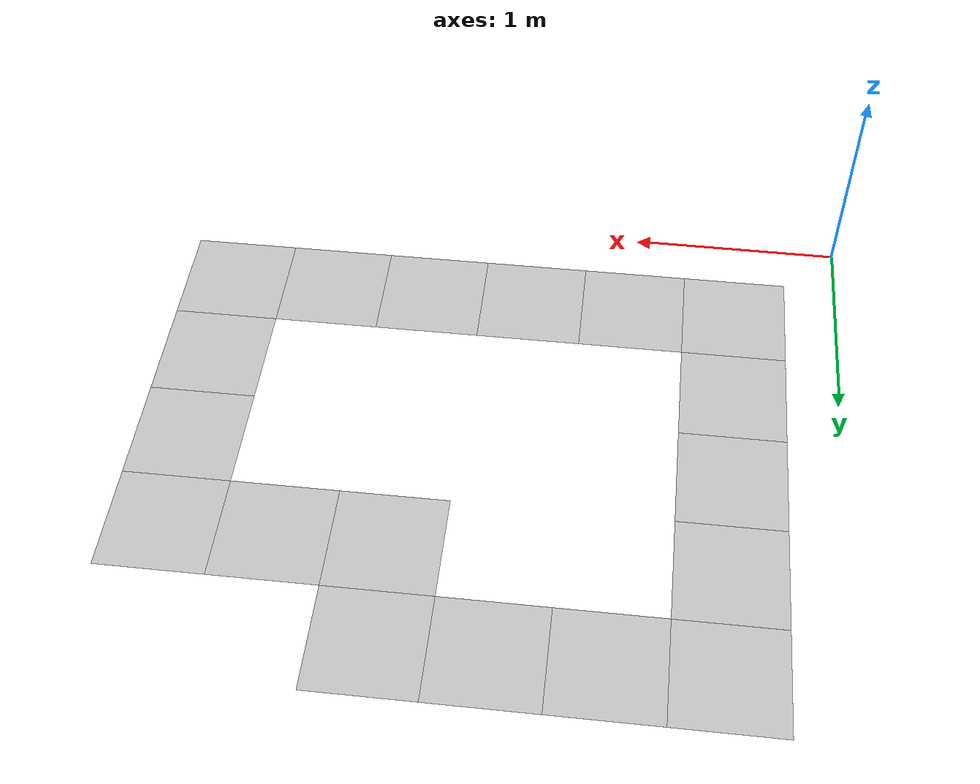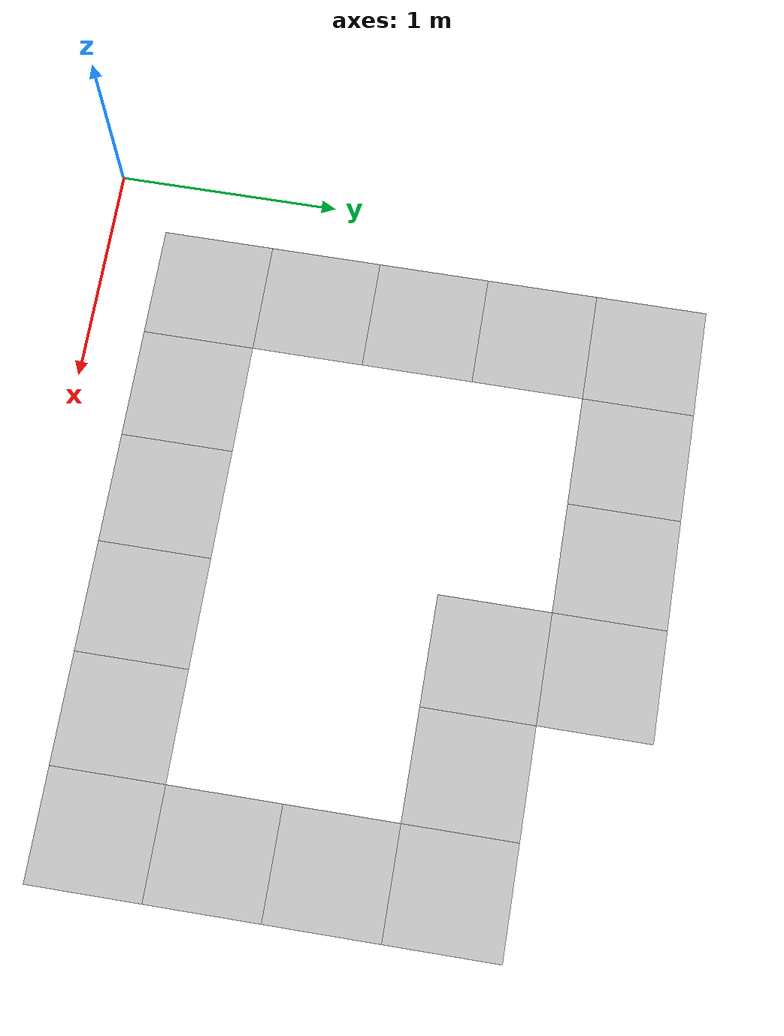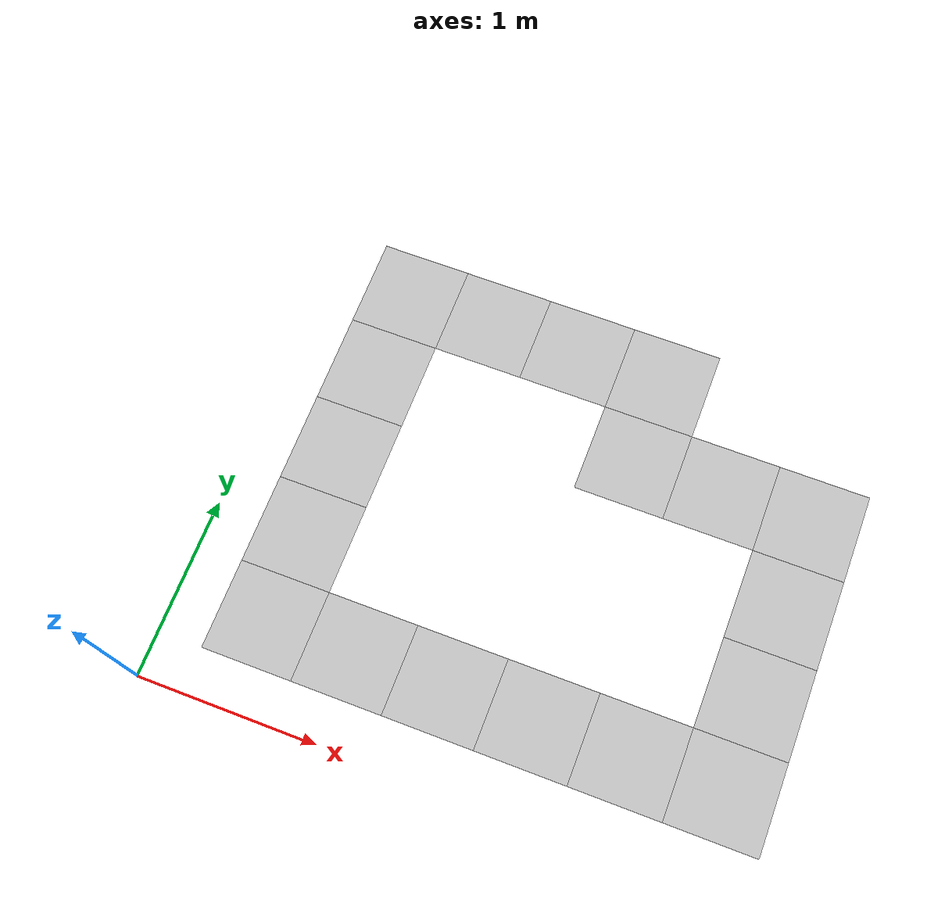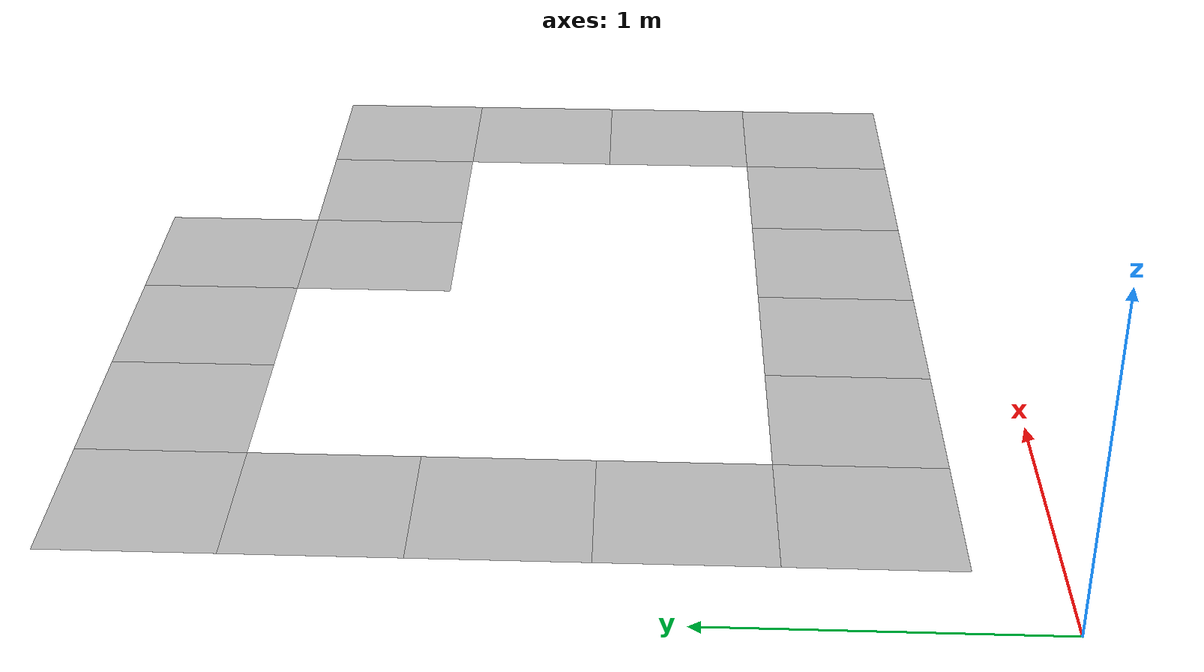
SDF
<sdf version="1.9">
 <world name="default">
  <model name="unit_box_tile_1_1">
   <model name="model_tile_1_1">
    <static>true</static>
    <pose>0.5 0.5 0.01 1.5707963267948966 -0 3.141592653589793</pose>
    <link name="link_tile_1_1">
     <collision name="collision_tile_1_1">
      <geometry>
       <mesh><scale>0.5 0.5 0.5</scale><uri>model://curve_left_1/meshes/curve_left_1.obj</uri></mesh>
      </geometry>
     </collision>
     <visual name="visual_tile_1_1">
      <geometry>
       <mesh>
        <scale>0.5 0.5 0.5</scale>
        <uri>model://curve_left_1/meshes/curve_left_1.obj</uri>
        <pose>0.5 0.5 0.01 1.5707963267948966 -0 3.141592653589793</pose>
       </mesh>
      </geometry>
     </visual>
    </link>
   </model>
   <static>false</static>
  </model>
  <model name="unit_box_tile_2_1">
   <model name="model_tile_2_1">
    <static>true</static>
    <pose>1.0 0.5 0.01 1.5707963267948966 -0 4.71238898038469</pose>
    <link name="link_tile_2_1">
     <collision name="collision_tile_2_1">
      <geometry><mesh><scale>0.5 0.5 0.5</scale><uri>model://straight/meshes/straight.obj</uri></mesh></geometry>
     </collision>
     <visual name="visual_tile_2_1">
      <geometry>
       <mesh>
        <scale>0.5 0.5 0.5</scale>
        <uri>model://straight/meshes/straight.obj</uri>
        <pose>1.0 0.5 0.01 1.5707963267948966 -0 4.71238898038469</pose>
       </mesh>
      </geometry>
     </visual>
    </link>
   </model>
   <static>false</static>
  </model>
  <model name="unit_box_tile_3_1">
   <model name="model_tile_3_1">
    <static>true</static>
    <pose>1.5 0.5 0.01 1.5707963267948966 -0 4.71238898038469</pose>
    <link name="link_tile_3_1">
     <collision name="collision_tile_3_1">
      <geometry><mesh><scale>0.5 0.5 0.5</scale><uri>model://straight/meshes/straight.obj</uri></mesh></geometry>
     </collision>
     <visual name="visual_tile_3_1">
      <geometry>
       <mesh>
        <scale>0.5 0.5 0.5</scale>
        <uri>model://straight/meshes/straight.obj</uri>
        <pose>1.5 0.5 0.01 1.5707963267948966 -0 4.71238898038469</pose>
       </mesh>
      </geometry>
     </visual>
    </link>
   </model>
   <static>false</static>
  </model>
  <model name="unit_box_tile_4_1">
   <model name="model_tile_4_1">
    <static>true</static>
    <pose>2.0 0.5 0.01 1.5707963267948966 -0 4.71238898038469</pose>
    <link name="link_tile_4_1">
     <collision name="collision_tile_4_1">
      <geometry><mesh><scale>0.5 0.5 0.5</scale><uri>model://straight/meshes/straight.obj</uri></mesh></geometry>
     </collision>
     <visual name="visual_tile_4_1">
      <geometry>
       <mesh>
        <scale>0.5 0.5 0.5</scale>
        <uri>model://straight/meshes/straight.obj</uri>
        <pose>2.0 0.5 0.01 1.5707963267948966 -0 4.71238898038469</pose>
       </mesh>
      </geometry>
     </visual>
    </link>
   </model>
   <static>false</static>
  </model>
  <model name="unit_box_tile_5_1">
   <model name="model_tile_5_1">
    <static>true</static>
    <pose>2.5 0.5 0.01 1.5707963267948966 -0 4.71238898038469</pose>
    <link name="link_tile_5_1">
     <collision name="collision_tile_5_1">
      <geometry><mesh><scale>0.5 0.5 0.5</scale><uri>model://straight/meshes/straight.obj</uri></mesh></geometry>
     </collision>
     <visual name="visual_tile_5_1">
      <geometry>
       <mesh>
        <scale>0.5 0.5 0.5</scale>
        <uri>model://straight/meshes/straight.obj</uri>
        <pose>2.5 0.5 0.01 1.5707963267948966 -0 4.71238898038469</pose>
       </mesh>
      </geometry>
     </visual>
    </link>
   </model>
   <static>false</static>
  </model>
  <model name="unit_box_tile_6_1">
   <model name="model_tile_6_1">
    <static>true</static>
    <pose>3.0 0.5 0.01 1.5707963267948966 -0 4.71238898038469</pose>
    <link name="link_tile_6_1">
     <collision name="collision_tile_6_1">
      <geometry>
       <mesh><scale>0.5 0.5 0.5</scale><uri>model://curve_left_1/meshes/curve_left_1.obj</uri></mesh>
      </geometry>
     </collision>
     <visual name="visual_tile_6_1">
      <geometry>
       <mesh>
        <scale>0.5 0.5 0.5</scale>
        <uri>model://curve_left_1/meshes/curve_left_1.obj</uri>
        <pose>3.0 0.5 0.01 1.5707963267948966 -0 4.71238898038469</pose>
       </mesh>
      </geometry>
     </visual>
    </link>
   </model>
   <static>false</static>
  </model>
  <model name="unit_box_tile_1_2">
   <model name="model_tile_1_2">
    <static>true</static>
    <pose>0.5 1.0 0.01 1.5707963267948966 -0 3.141592653589793</pose>
    <link name="link_tile_1_2">
     <collision name="collision_tile_1_2">
      <geometry><mesh><scale>0.5 0.5 0.5</scale><uri>model://straight/meshes/straight.obj</uri></mesh></geometry>
     </collision>
     <visual name="visual_tile_1_2">
      <geometry>
       <mesh>
        <scale>0.5 0.5 0.5</scale>
        <uri>model://straight/meshes/straight.obj</uri>
        <pose>0.5 1.0 0.01 1.5707963267948966 -0 3.141592653589793</pose>
       </mesh>
      </geometry>
     </visual>
    </link>
   </model>
   <static>false</static>
  </model>
  <model name="unit_box_tile_6_2">
   <model name="model_tile_6_2">
    <static>true</static>
    <pose>3.0 1.0 0.01 1.5707963267948966 -0 0.0</pose>
    <link name="link_tile_6_2">
     <collision name="collision_tile_6_2">
      <geometry><mesh><scale>0.5 0.5 0.5</scale><uri>model://straight/meshes/straight.obj</uri></mesh></geometry>
     </collision>
     <visual name="visual_tile_6_2">
      <geometry>
       <mesh>
        <scale>0.5 0.5 0.5</scale>
        <uri>model://straight/meshes/straight.obj</uri>
        <pose>3.0 1.0 0.01 1.5707963267948966 -0 0.0</pose>
       </mesh>
      </geometry>
     </visual>
    </link>
   </model>
   <static>false</static>
  </model>
  <model name="unit_box_tile_1_3">
   <model name="model_tile_1_3">
    <static>true</static>
    <pose>0.5 1.5 0.01 1.5707963267948966 -0 3.141592653589793</pose>
    <link name="link_tile_1_3">
     <collision name="collision_tile_1_3">
      <geometry><mesh><scale>0.5 0.5 0.5</scale><uri>model://straight/meshes/straight.obj</uri></mesh></geometry>
     </collision>
     <visual name="visual_tile_1_3">
      <geometry>
       <mesh>
        <scale>0.5 0.5 0.5</scale>
        <uri>model://straight/meshes/straight.obj</uri>
        <pose>0.5 1.5 0.01 1.5707963267948966 -0 3.141592653589793</pose>
       </mesh>
      </geometry>
     </visual>
    </link>
   </model>
   <static>false</static>
  </model>
  <model name="unit_box_tile_6_3">
   <model name="model_tile_6_3">
    <static>true</static>
    <pose>3.0 1.5 0.01 1.5707963267948966 -0 0.0</pose>
    <link name="link_tile_6_3">
     <collision name="collision_tile_6_3">
      <geometry><mesh><scale>0.5 0.5 0.5</scale><uri>model://straight/meshes/straight.obj</uri></mesh></geometry>
     </collision>
     <visual name="visual_tile_6_3">
      <geometry>
       <mesh>
        <scale>0.5 0.5 0.5</scale>
        <uri>model://straight/meshes/straight.obj</uri>
        <pose>3.0 1.5 0.01 1.5707963267948966 -0 0.0</pose>
       </mesh>
      </geometry>
     </visual>
    </link>
   </model>
   <static>false</static>
  </model>
  <model name="unit_box_tile_1_4">
   <model name="model_tile_1_4">
    <static>true</static>
    <pose>0.5 2.0 0.01 1.5707963267948966 -0 3.141592653589793</pose>
    <link name="link_tile_1_4">
     <collision name="collision_tile_1_4">
      <geometry><mesh><scale>0.5 0.5 0.5</scale><uri>model://straight/meshes/straight.obj</uri></mesh></geometry>
     </collision>
     <visual name="visual_tile_1_4">
      <geometry>
       <mesh>
        <scale>0.5 0.5 0.5</scale>
        <uri>model://straight/meshes/straight.obj</uri>
        <pose>0.5 2.0 0.01 1.5707963267948966 -0 3.141592653589793</pose>
       </mesh>
      </geometry>
     </visual>
    </link>
   </model>
   <static>false</static>
  </model>
  <model name="unit_box_tile_4_4">
   <model name="model_tile_4_4">
    <static>true</static>
    <pose>2.0 2.0 0.01 1.5707963267948966 -0 1.5707963267948966</pose>
    <link name="link_tile_4_4">
     <collision name="collision_tile_4_4">
      <geometry>
       <mesh><scale>0.5 0.5 0.5</scale><uri>model://curve_right_1/meshes/curve_right_1.obj</uri></mesh>
      </geometry>
     </collision>
     <visual name="visual_tile_4_4">
      <geometry>
       <mesh>
        <scale>0.5 0.5 0.5</scale>
        <uri>model://curve_right_1/meshes/curve_right_1.obj</uri>
        <pose>2.0 2.0 0.01 1.5707963267948966 -0 1.5707963267948966</pose>
       </mesh>
      </geometry>
     </visual>
    </link>
   </model>
   <static>false</static>
  </model>
  <model name="unit_box_tile_5_4">
   <model name="model_tile_5_4">
    <static>true</static>
    <pose>2.5 2.0 0.01 1.5707963267948966 -0 1.5707963267948966</pose>
    <link name="link_tile_5_4">
     <collision name="collision_tile_5_4">
      <geometry><mesh><scale>0.5 0.5 0.5</scale><uri>model://straight/meshes/straight.obj</uri></mesh></geometry>
     </collision>
     <visual name="visual_tile_5_4">
      <geometry>
       <mesh>
        <scale>0.5 0.5 0.5</scale>
        <uri>model://straight/meshes/straight.obj</uri>
        <pose>2.5 2.0 0.01 1.5707963267948966 -0 1.5707963267948966</pose>
       </mesh>
      </geometry>
     </visual>
    </link>
   </model>
   <static>false</static>
  </model>
  <model name="unit_box_tile_6_4">
   <model name="model_tile_6_4">
    <static>true</static>
    <pose>3.0 2.0 0.01 1.5707963267948966 -0 0.0</pose>
    <link name="link_tile_6_4">
     <collision name="collision_tile_6_4">
      <geometry>
       <mesh><scale>0.5 0.5 0.5</scale><uri>model://curve_left_1/meshes/curve_left_1.obj</uri></mesh>
      </geometry>
     </collision>
     <visual name="visual_tile_6_4">
      <geometry>
       <mesh>
        <scale>0.5 0.5 0.5</scale>
        <uri>model://curve_left_1/meshes/curve_left_1.obj</uri>
        <pose>3.0 2.0 0.01 1.5707963267948966 -0 0.0</pose>
       </mesh>
      </geometry>
     </visual>
    </link>
   </model>
   <static>false</static>
  </model>
  <model name="unit_box_tile_1_5">
   <model name="model_tile_1_5">
    <static>true</static>
    <pose>0.5 2.5 0.01 1.5707963267948966 -0 1.5707963267948966</pose>
    <link name="link_tile_1_5">
     <collision name="collision_tile_1_5">
      <geometry>
       <mesh><scale>0.5 0.5 0.5</scale><uri>model://curve_left_1/meshes/curve_left_1.obj</uri></mesh>
      </geometry>
     </collision>
     <visual name="visual_tile_1_5">
      <geometry>
       <mesh>
        <scale>0.5 0.5 0.5</scale>
        <uri>model://curve_left_1/meshes/curve_left_1.obj</uri>
        <pose>0.5 2.5 0.01 1.5707963267948966 -0 1.5707963267948966</pose>
       </mesh>
      </geometry>
     </visual>
    </link>
   </model>
   <static>false</static>
  </model>
  <model name="unit_box_tile_2_5">
   <model name="model_tile_2_5">
    <static>true</static>
    <pose>1.0 2.5 0.01 1.5707963267948966 -0 1.5707963267948966</pose>
    <link name="link_tile_2_5">
     <collision name="collision_tile_2_5">
      <geometry><mesh><scale>0.5 0.5 0.5</scale><uri>model://straight/meshes/straight.obj</uri></mesh></geometry>
     </collision>
     <visual name="visual_tile_2_5">
      <geometry>
       <mesh>
        <scale>0.5 0.5 0.5</scale>
        <uri>model://straight/meshes/straight.obj</uri>
        <pose>1.0 2.5 0.01 1.5707963267948966 -0 1.5707963267948966</pose>
       </mesh>
      </geometry>
     </visual>
    </link>
   </model>
   <static>false</static>
  </model>
  <model name="unit_box_tile_3_5">
   <model name="model_tile_3_5">
    <static>true</static>
    <pose>1.5 2.5 0.01 1.5707963267948966 -0 1.5707963267948966</pose>
    <link name="link_tile_3_5">
     <collision name="collision_tile_3_5">
      <geometry><mesh><scale>0.5 0.5 0.5</scale><uri>model://straight/meshes/straight.obj</uri></mesh></geometry>
     </collision>
     <visual name="visual_tile_3_5">
      <geometry>
       <mesh>
        <scale>0.5 0.5 0.5</scale>
        <uri>model://straight/meshes/straight.obj</uri>
        <pose>1.5 2.5 0.01 1.5707963267948966 -0 1.5707963267948966</pose>
       </mesh>
      </geometry>
     </visual>
    </link>
   </model>
   <static>false</static>
  </model>
  <model name="unit_box_tile_4_5">
   <model name="model_tile_4_5">
    <static>true</static>
    <pose>2.0 2.5 0.01 1.5707963267948966 -0 0.0</pose>
    <link name="link_tile_4_5">
     <collision name="collision_tile_4_5">
      <geometry>
       <mesh><scale>0.5 0.5 0.5</scale><uri>model://curve_left_1/meshes/curve_left_1.obj</uri></mesh>
      </geometry>
     </collision>
     <visual name="visual_tile_4_5">
      <geometry>
       <mesh>
        <scale>0.5 0.5 0.5</scale>
        <uri>model://curve_left_1/meshes/curve_left_1.obj</uri>
        <pose>2.0 2.5 0.01 1.5707963267948966 -0 0.0</pose>
       </mesh>
      </geometry>
     </visual>
    </link>
   </model>
   <static>false</static>
  </model>
  <model name="model_obj_0_5_1_5">
   <static>true</static>
   <pose>0.25 0.75 0.01 1.5708 -0 0</pose>
   <link name="link_obj_0_5_1_5">
    <collision name="collision_obj_0_5_1_5">
     <geometry>
      <mesh>
       <scale>0.001586 0.001586 0.001586</scale>
       <uri>file:///home/arendjan/ros2/ros2_rsp/install/mirte_gazebo/share/mirte_gazebo/worlds/model://cone/meshes/cone.obj</uri>
      </mesh>
     </geometry>
    </collision>
    <visual name="visual_obj_0_5_1_5">
     <geometry>
      <mesh>
       <scale>0.001586 0.001586 0.001586</scale>
       <uri>file:///home/arendjan/ros2/ros2_rsp/install/mirte_gazebo/share/mirte_gazebo/worlds/model://cone/meshes/cone.obj</uri>
       <pose>0.25 0.75 0.01 1.5707963267948966 -0 0.0</pose>
      </mesh>
     </geometry>
    </visual>
    <inertial>
     <mass>1</mass>
     <inertia><ixx>1</ixx><ixy>0</ixy><ixz>0</ixz><iyy>1</iyy><iyz>0</iyz><izz>1</izz></inertia>
    </inertial>
   </link>
  </model>
  <model name="model_obj_1_5_0_5">
   <static>true</static>
   <pose>0.75 0.25 0.01 1.5708 -0 0</pose>
   <link name="link_obj_1_5_0_5">
    <collision name="collision_obj_1_5_0_5">
     <geometry>
      <mesh>
       <scale>0.001586 0.001586 0.001586</scale>
       <uri>file:///home/arendjan/ros2/ros2_rsp/install/mirte_gazebo/share/mirte_gazebo/worlds/model://cone/meshes/cone.obj</uri>
      </mesh>
     </geometry>
    </collision>
    <visual name="visual_obj_1_5_0_5">
     <geometry>
      <mesh>
       <scale>0.001586 0.001586 0.001586</scale>
       <uri>file:///home/arendjan/ros2/ros2_rsp/install/mirte_gazebo/share/mirte_gazebo/worlds/model://cone/meshes/cone.obj</uri>
       <pose>0.75 0.25 0.01 1.5707963267948966 -0 0.0</pose>
      </mesh>
     </geometry>
    </visual>
    <inertial>
     <mass>1</mass>
     <inertia><ixx>1</ixx><ixy>0</ixy><ixz>0</ixz><iyy>1</iyy><iyz>0</iyz><izz>1</izz></inertia>
    </inertial>
   </link>
  </model>
  <model name="model_obj_0_55_1_25">
   <static>true</static>
   <pose>0.275 0.625 0.01 1.5708 -0 0</pose>
   <link name="link_obj_0_55_1_25">
    <collision name="collision_obj_0_55_1_25">
     <geometry>
      <mesh>
       <scale>0.001586 0.001586 0.001586</scale>
       <uri>file:///home/arendjan/ros2/ros2_rsp/install/mirte_gazebo/share/mirte_gazebo/worlds/model://cone/meshes/cone.obj</uri>
      </mesh>
     </geometry>
    </collision>
    <visual name="visual_obj_0_55_1_25">
     <geometry>
      <mesh>
       <scale>0.001586 0.001586 0.001586</scale>
       <uri>file:///home/arendjan/ros2/ros2_rsp/install/mirte_gazebo/share/mirte_gazebo/worlds/model://cone/meshes/cone.obj</uri>
       <pose>0.275 0.625 0.01 1.5707963267948966 -0 0.0</pose>
      </mesh>
     </geometry>
    </visual>
    <inertial>
     <mass>1</mass>
     <inertia><ixx>1</ixx><ixy>0</ixy><ixz>0</ixz><iyy>1</iyy><iyz>0</iyz><izz>1</izz></inertia>
    </inertial>
   </link>
  </model>
  <model name="model_obj_1_25_0_55">
   <static>true</static>
   <pose>0.625 0.275 0.01 1.5708 -0 0</pose>
   <link name="link_obj_1_25_0_55">
    <collision name="collision_obj_1_25_0_55">
     <geometry>
      <mesh>
       <scale>0.001586 0.001586 0.001586</scale>
       <uri>file:///home/arendjan/ros2/ros2_rsp/install/mirte_gazebo/share/mirte_gazebo/worlds/model://cone/meshes/cone.obj</uri>
      </mesh>
     </geometry>
    </collision>
    <visual name="visual_obj_1_25_0_55">
     <geometry>
      <mesh>
       <scale>0.001586 0.001586 0.001586</scale>
       <uri>file:///home/arendjan/ros2/ros2_rsp/install/mirte_gazebo/share/mirte_gazebo/worlds/model://cone/meshes/cone.obj</uri>
       <pose>0.625 0.275 0.01 1.5707963267948966 -0 0.0</pose>
      </mesh>
     </geometry>
    </visual>
    <inertial>
     <mass>1</mass>
     <inertia><ixx>1</ixx><ixy>0</ixy><ixz>0</ixz><iyy>1</iyy><iyz>0</iyz><izz>1</izz></inertia>
    </inertial>
   </link>
  </model>
  <model name="model_obj_0_7_0_7">
   <static>true</static>
   <pose>0.35 0.35 0.01 1.5708 -0 0</pose>
   <link name="link_obj_0_7_0_7">
    <collision name="collision_obj_0_7_0_7">
     <geometry>
      <mesh>
       <scale>0.001586 0.001586 0.001586</scale>
       <uri>file:///home/arendjan/ros2/ros2_rsp/install/mirte_gazebo/share/mirte_gazebo/worlds/model://cone/meshes/cone.obj</uri>
      </mesh>
     </geometry>
    </collision>
    <visual name="visual_obj_0_7_0_7">
     <geometry>
      <mesh>
       <scale>0.001586 0.001586 0.001586</scale>
       <uri>file:///home/arendjan/ros2/ros2_rsp/install/mirte_gazebo/share/mirte_gazebo/worlds/model://cone/meshes/cone.obj</uri>
       <pose>0.35 0.35 0.01 1.5707963267948966 -0 0.0</pose>
      </mesh>
     </geometry>
    </visual>
    <inertial>
     <mass>1</mass>
     <inertia><ixx>1</ixx><ixy>0</ixy><ixz>0</ixz><iyy>1</iyy><iyz>0</iyz><izz>1</izz></inertia>
    </inertial>
   </link>
  </model>
  <model name="model_obj_1_0_0_6000000000000001">
   <static>true</static>
   <pose>0.5 0.3 0.01 1.5708 -0 0</pose>
   <link name="link_obj_1_0_0_6000000000000001">
    <collision name="collision_obj_1_0_0_6000000000000001">
     <geometry>
      <mesh>
       <scale>0.001586 0.001586 0.001586</scale>
       <uri>file:///home/arendjan/ros2/ros2_rsp/install/mirte_gazebo/share/mirte_gazebo/worlds/model://cone/meshes/cone.obj</uri>
      </mesh>
     </geometry>
    </collision>
    <visual name="visual_obj_1_0_0_6000000000000001">
     <geometry>
      <mesh>
       <scale>0.001586 0.001586 0.001586</scale>
       <uri>file:///home/arendjan/ros2/ros2_rsp/install/mirte_gazebo/share/mirte_gazebo/worlds/model://cone/meshes/cone.obj</uri>
       <pose>0.5 0.30000000000000004 0.01 1.5707963267948966 -0 0.0</pose>
      </mesh>
     </geometry>
    </visual>
    <inertial>
     <mass>1</mass>
     <inertia><ixx>1</ixx><ixy>0</ixy><ixz>0</ixz><iyy>1</iyy><iyz>0</iyz><izz>1</izz></inertia>
    </inertial>
   </link>
  </model>
  <model name="model_obj_0_6000000000000001_1_0">
   <static>true</static>
   <pose>0.3 0.5 0.01 1.5708 -0 0</pose>
   <link name="link_obj_0_6000000000000001_1_0">
    <collision name="collision_obj_0_6000000000000001_1_0">
     <geometry>
      <mesh>
       <scale>0.001586 0.001586 0.001586</scale>
       <uri>file:///home/arendjan/ros2/ros2_rsp/install/mirte_gazebo/share/mirte_gazebo/worlds/model://cone/meshes/cone.obj</uri>
      </mesh>
     </geometry>
    </collision>
    <visual name="visual_obj_0_6000000000000001_1_0">
     <geometry>
      <mesh>
       <scale>0.001586 0.001586 0.001586</scale>
       <uri>file:///home/arendjan/ros2/ros2_rsp/install/mirte_gazebo/share/mirte_gazebo/worlds/model://cone/meshes/cone.obj</uri>
       <pose>0.30000000000000004 0.5 0.01 1.5707963267948966 -0 0.0</pose>
      </mesh>
     </geometry>
    </visual>
    <inertial>
     <mass>1</mass>
     <inertia><ixx>1</ixx><ixy>0</ixy><ixz>0</ixz><iyy>1</iyy><iyz>0</iyz><izz>1</izz></inertia>
    </inertial>
   </link>
  </model>
  <model name="model_obj_1_5_1_5">
   <static>true</static>
   <pose>0.75 0.75 0.01 1.5708 -0 0</pose>
   <link name="link_obj_1_5_1_5">
    <collision name="collision_obj_1_5_1_5">
     <geometry>
      <mesh>
       <scale>0.001586 0.001586 0.001586</scale>
       <uri>file:///home/arendjan/ros2/ros2_rsp/install/mirte_gazebo/share/mirte_gazebo/worlds/model://cone/meshes/cone.obj</uri>
      </mesh>
     </geometry>
    </collision>
    <visual name="visual_obj_1_5_1_5">
     <geometry>
      <mesh>
       <scale>0.001586 0.001586 0.001586</scale>
       <uri>file:///home/arendjan/ros2/ros2_rsp/install/mirte_gazebo/share/mirte_gazebo/worlds/model://cone/meshes/cone.obj</uri>
       <pose>0.75 0.75 0.01 1.5707963267948966 -0 0.0</pose>
      </mesh>
     </geometry>
    </visual>
    <inertial>
     <mass>1</mass>
     <inertia><ixx>1</ixx><ixy>0</ixy><ixz>0</ixz><iyy>1</iyy><iyz>0</iyz><izz>1</izz></inertia>
    </inertial>
   </link>
  </model>
  <model name="model_obj_0_5_1_75">
   <static>true</static>
   <pose>0.25 0.875 0.01 1.5708 -0 0</pose>
   <link name="link_obj_0_5_1_75">
    <collision name="collision_obj_0_5_1_75">
     <geometry>
      <mesh>
       <scale>0.001586 0.001586 0.001586</scale>
       <uri>file:///home/arendjan/ros2/ros2_rsp/install/mirte_gazebo/share/mirte_gazebo/worlds/model://cone/meshes/cone.obj</uri>
      </mesh>
     </geometry>
    </collision>
    <visual name="visual_obj_0_5_1_75">
     <geometry>
      <mesh>
       <scale>0.001586 0.001586 0.001586</scale>
       <uri>file:///home/arendjan/ros2/ros2_rsp/install/mirte_gazebo/share/mirte_gazebo/worlds/model://cone/meshes/cone.obj</uri>
       <pose>0.25 0.875 0.01 1.5707963267948966 -0 0.0</pose>
      </mesh>
     </geometry>
    </visual>
    <inertial>
     <mass>1</mass>
     <inertia><ixx>1</ixx><ixy>0</ixy><ixz>0</ixz><iyy>1</iyy><iyz>0</iyz><izz>1</izz></inertia>
    </inertial>
   </link>
  </model>
  <model name="model_obj_0_5_2_0">
   <static>true</static>
   <pose>0.25 1 0.01 1.5708 -0 0</pose>
   <link name="link_obj_0_5_2_0">
    <collision name="collision_obj_0_5_2_0">
     <geometry>
      <mesh>
       <scale>0.001586 0.001586 0.001586</scale>
       <uri>file:///home/arendjan/ros2/ros2_rsp/install/mirte_gazebo/share/mirte_gazebo/worlds/model://cone/meshes/cone.obj</uri>
      </mesh>
     </geometry>
    </collision>
    <visual name="visual_obj_0_5_2_0">
     <geometry>
      <mesh>
       <scale>0.001586 0.001586 0.001586</scale>
       <uri>file:///home/arendjan/ros2/ros2_rsp/install/mirte_gazebo/share/mirte_gazebo/worlds/model://cone/meshes/cone.obj</uri>
       <pose>0.25 1.0 0.01 1.5707963267948966 -0 0.0</pose>
      </mesh>
     </geometry>
    </visual>
    <inertial>
     <mass>1</mass>
     <inertia><ixx>1</ixx><ixy>0</ixy><ixz>0</ixz><iyy>1</iyy><iyz>0</iyz><izz>1</izz></inertia>
    </inertial>
   </link>
  </model>
  <model name="model_obj_1_5_1_75">
   <static>true</static>
   <pose>0.75 0.875 0.01 1.5708 -0 0</pose>
   <link name="link_obj_1_5_1_75">
    <collision name="collision_obj_1_5_1_75">
     <geometry>
      <mesh>
       <scale>0.001586 0.001586 0.001586</scale>
       <uri>file:///home/arendjan/ros2/ros2_rsp/install/mirte_gazebo/share/mirte_gazebo/worlds/model://cone/meshes/cone.obj</uri>
      </mesh>
     </geometry>
    </collision>
    <visual name="visual_obj_1_5_1_75">
     <geometry>
      <mesh>
       <scale>0.001586 0.001586 0.001586</scale>
       <uri>file:///home/arendjan/ros2/ros2_rsp/install/mirte_gazebo/share/mirte_gazebo/worlds/model://cone/meshes/cone.obj</uri>
       <pose>0.75 0.875 0.01 1.5707963267948966 -0 0.0</pose>
      </mesh>
     </geometry>
    </visual>
    <inertial>
     <mass>1</mass>
     <inertia><ixx>1</ixx><ixy>0</ixy><ixz>0</ixz><iyy>1</iyy><iyz>0</iyz><izz>1</izz></inertia>
    </inertial>
   </link>
  </model>
 </world>
</sdf>
